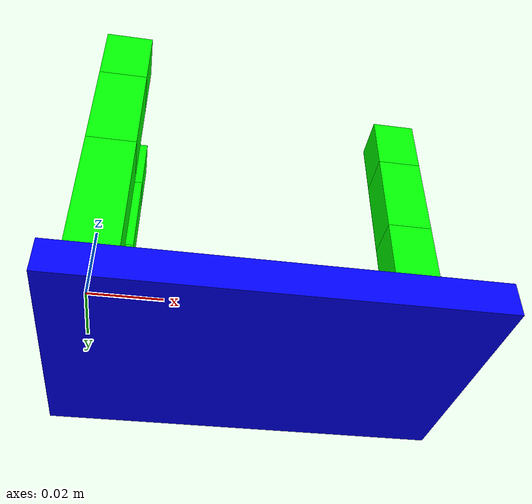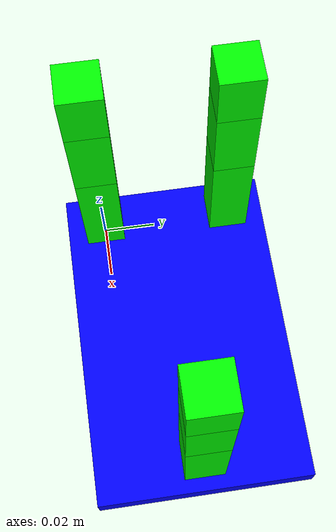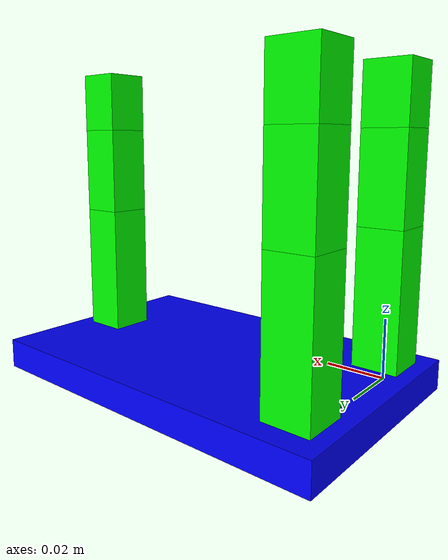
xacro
<?xml version="1.0"?>
<robot xmlns:xacro="http://www.ros.org/wiki/xacro" name="three_finger_arm">

  <!-- Pointer lengths -->
  <xacro:property name="pointer_l1" value="0.05"/>
  <xacro:property name="pointer_l2" value="0.03"/>
  <xacro:property name="pointer_l3" value="0.02"/>

  <xacro:property name="pointer_p1" value="0"/>
  <xacro:property name="pointer_p2" value="0.05"/>
  <xacro:property name="pointer_p3" value="0"/>

  <!-- Middle lengths -->
  <xacro:property name="middle_l1" value="0.05"/>
  <xacro:property name="middle_l2" value="0.03"/>
  <xacro:property name="middle_l3" value="0.02"/>

  <xacro:property name="middle_p1" value="0"/>
  <xacro:property name="middle_p2" value="0"/>
  <xacro:property name="middle_p3" value="0"/>

  <!-- Thumb lengths -->
  <xacro:property name="thumb_l1" value="0.05"/>
  <xacro:property name="thumb_l2" value="0.03"/>
  <xacro:property name="thumb_l3" value="0.02"/>

  <xacro:property name="thumb_p1" value="0.1"/>
  <xacro:property name="thumb_p2" value="0.025"/>
  <xacro:property name="thumb_p3" value="0"/>

  <link name="base_link">
    <visual>
      <geometry>
        <box size="0.125 0.08 0.01"/>
      </geometry>
      <origin xyz="0.05 0.025 0" rpy="0 0 0"/>
      <material name="blue">
        <color rgba="0 0 1 1"/>
      </material>
    </visual>
  </link>

<!-- THUMB -->
  <joint name="thumb_joint0" type="revolute">
    <parent link="base_link"/>
    <child link="thumb_base"/>
    <origin xyz="${thumb_p1} ${thumb_p2} ${thumb_p3}" rpy="0 0 3.14"/>
    <axis xyz="1 0 0"/>
    <limit lower="-0.1" upper="0.1" effort="1" velocity="1"/>
  </joint>

  <link name="thumb_base" />

  <joint name="thumb_joint1" type="revolute">
    <parent link="thumb_base"/>
    <child link="thumb_seg1"/>
    <origin xyz="0 0 0" rpy="0 0 0"/>
    <axis xyz="0 1 0"/>
    <limit lower="-0.2" upper="1" effort="1" velocity="1"/>
  </joint>

  <link name="thumb_seg1">
    <visual>
      <geometry>
        <box size="0.015 0.015 ${thumb_l1}"/>
      </geometry>
      <origin xyz="0 0 ${thumb_l1/2}" rpy="0 0 0"/>
      <material name="green">
        <color rgba="0 1 0 1"/>
      </material>
    </visual>
  </link>

  <joint name="thumb_joint2" type="revolute">
    <parent link="thumb_seg1"/>
    <child link="thumb_seg2"/>
    <origin xyz="0 0 ${thumb_l1}" rpy="0 0 0"/>
    <axis xyz="0 1 0"/>
    <limit lower="0" upper="1.5" effort="1" velocity="1"/>
  </joint>

  <link name="thumb_seg2">
    <visual>
      <geometry>
        <box size="0.015 0.015 ${thumb_l2}"/>
      </geometry>
      <origin xyz="0 0 ${thumb_l2/2}" rpy="0 0 0"/>
      <material name="green">
        <color rgba="0 1 0 1"/>
      </material>
    </visual>
  </link>

  <joint name="thumb_joint3" type="revolute">
    <parent link="thumb_seg2"/>
    <child link="thumb_seg3"/>
    <origin xyz="0 0 ${thumb_l2}" rpy="0 0 0"/>
    <axis xyz="0 1 0"/>
    <limit lower="0" upper="1.5" effort="1" velocity="1"/>
  </joint>

  <link name="thumb_seg3">
    <visual>
      <geometry>
        <box size="0.015 0.015 ${thumb_l3}"/>
      </geometry>
      <origin xyz="0 0 ${thumb_l3/2}" rpy="0 0 0"/>
      <material name="green">
        <color rgba="0 1 0 1"/>
      </material>
    </visual>
  </link>

<!-- POINTER FINGER -->
  <joint name="pointer_joint0" type="revolute">
    <parent link="base_link"/>
    <child link="pointer_base"/>
    <origin xyz="${pointer_p1} ${pointer_p2} ${pointer_p3}" rpy="0 0 0"/>
    <axis xyz="1 0 0"/>
    <limit lower="-0.1" upper="0.1" effort="1" velocity="1"/>
  </joint>

  <link name="pointer_base" />

  <joint name="pointer_joint1" type="revolute">
    <parent link="pointer_base"/>
    <child link="pointer_seg1"/>
    <origin xyz="0 0 0" rpy="0 0 0"/>
    <axis xyz="0 1 0"/>
    <limit lower="-0.2" upper="1" effort="1" velocity="1"/>
  </joint>

  <link name="pointer_seg1">
    <visual>
      <geometry>
        <box size="0.015 0.015 ${pointer_l1}"/>
      </geometry>
      <origin xyz="0 0 ${pointer_l1/2}" rpy="0 0 0"/>
      <material name="green">
        <color rgba="0 1 0 1"/>
      </material>
    </visual>
  </link>

  <joint name="pointer_joint2" type="revolute">
    <parent link="pointer_seg1"/>
    <child link="pointer_seg2"/>
    <origin xyz="0 0 ${pointer_l1}" rpy="0 0 0"/>
    <axis xyz="0 1 0"/>
    <limit lower="0" upper="1.5" effort="1" velocity="1"/>
  </joint>

  <link name="pointer_seg2">
    <visual>
      <geometry>
        <box size="0.015 0.015 ${pointer_l2}"/>
      </geometry>
      <origin xyz="0 0 ${pointer_l2/2}" rpy="0 0 0"/>
      <material name="green">
        <color rgba="0 1 0 1"/>
      </material>
    </visual>
  </link>

  <joint name="pointer_joint3" type="revolute">
    <parent link="pointer_seg2"/>
    <child link="pointer_seg3"/>
    <origin xyz="0 0 ${pointer_l2}" rpy="0 0 0"/>
    <axis xyz="0 1 0"/>
    <limit lower="0" upper="1.5" effort="1" velocity="1"/>
  </joint>

  <link name="pointer_seg3">
    <visual>
      <geometry>
        <box size="0.015 0.015 ${pointer_l3}"/>
      </geometry>
      <origin xyz="0 0 ${pointer_l3/2}" rpy="0 0 0"/>
      <material name="green">
        <color rgba="0 1 0 1"/>
      </material>
    </visual>
  </link>

  <!-- MIDDLE FINGER -->
  <joint name="middle_joint0" type="revolute">
    <parent link="base_link"/>
    <child link="middle_base"/>
    <origin xyz="${middle_p1} ${middle_p2} ${middle_p3}" rpy="0 0 0"/>
    <axis xyz="1 0 0"/>
    <limit lower="-0.1" upper="0.1" effort="1" velocity="1"/>
  </joint>

  <link name="middle_base" />

  <joint name="middle_joint1" type="revolute">
    <parent link="middle_base"/>
    <child link="middle_seg1"/>
    <origin xyz="0 0 0" rpy="0 0 0"/>
    <axis xyz="0 1 0"/>
    <limit lower="-0.2" upper="1.5" effort="1" velocity="1"/>
  </joint>

  <link name="middle_seg1">
    <visual>
      <geometry>
        <box size="0.015 0.015 ${middle_l1}"/>
      </geometry>
      <origin xyz="0 0 ${middle_l1/2}" rpy="0 0 0"/>
      <material name="green">
        <color rgba="0 1 0 1"/>
      </material>
    </visual>
  </link>

  <joint name="middle_joint2" type="revolute">
    <parent link="middle_seg1"/>
    <child link="middle_seg2"/>
    <origin xyz="0 0 ${middle_l1}" rpy="0 0 0"/>
    <axis xyz="0 1 0"/>
    <limit lower="0" upper="1.5" effort="1" velocity="1"/>
  </joint>

  <link name="middle_seg2">
    <visual>
      <geometry>
        <box size="0.015 0.015 ${middle_l2}"/>
      </geometry>
      <origin xyz="0 0 ${middle_l2/2}" rpy="0 0 0"/>
      <material name="green">
        <color rgba="0 1 0 1"/>
      </material>
    </visual>
  </link>

  <joint name="middle_joint3" type="revolute">
    <parent link="middle_seg2"/>
    <child link="middle_seg3"/>
    <origin xyz="0 0 ${middle_l2}" rpy="0 0 0"/>
    <axis xyz="0 1 0"/>
    <limit lower="0" upper="1.5" effort="1" velocity="1"/>
  </joint>

  <link name="middle_seg3">
    <visual>
      <geometry>
        <box size="0.015 0.015 ${middle_l3}"/>
      </geometry>
      <origin xyz="0 0 ${middle_l3/2}" rpy="0 0 0"/>
      <material name="green">
        <color rgba="0 1 0 1"/>
      </material>
    </visual>
  </link>

</robot>
